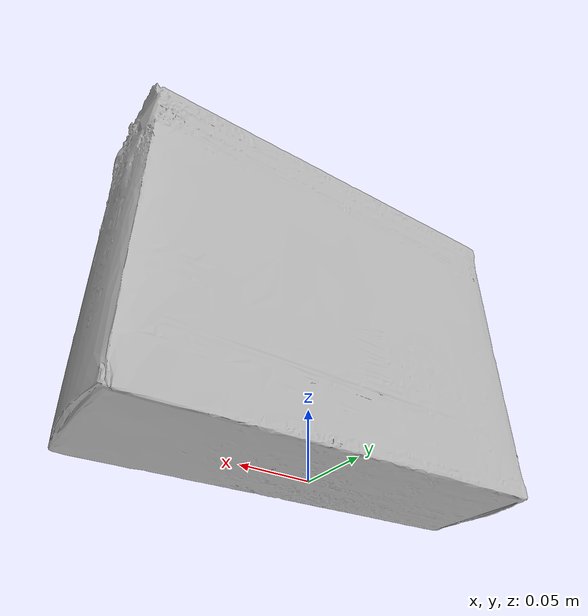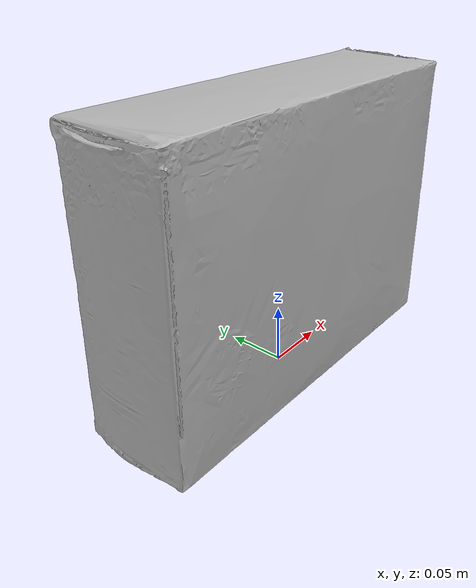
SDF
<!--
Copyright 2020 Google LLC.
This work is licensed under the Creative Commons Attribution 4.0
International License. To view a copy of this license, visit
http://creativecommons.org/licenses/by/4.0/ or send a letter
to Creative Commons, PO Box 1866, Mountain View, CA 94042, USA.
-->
<?xml version="1.0" ?>
<sdf version="1.6">
  <model name="Asus_80211ac_DualBand_Gigabit_Wireless_Router_RTAC68R">
    <link name="link_0">
      <visual name="visual">
        <geometry>
          <mesh>
            <uri>meshes/model.obj</uri>
          </mesh>
        </geometry>
      </visual>
      <collision name="collision_0">
        <geometry>
          <mesh>
            <uri>meshes/model.obj</uri>
          </mesh>
        </geometry>
      </collision>
    </link>
  </model>
</sdf>
